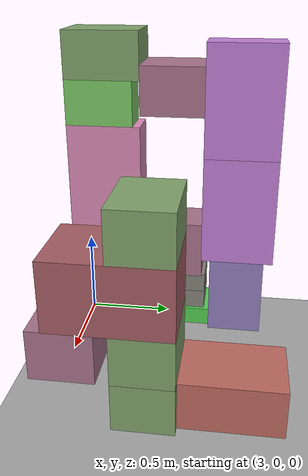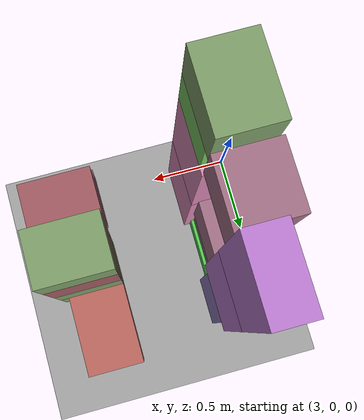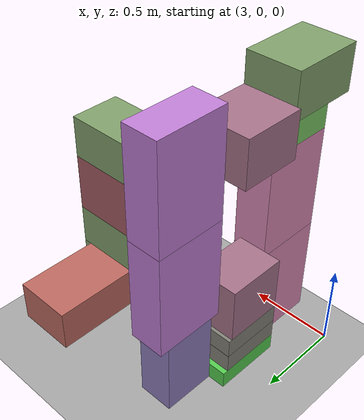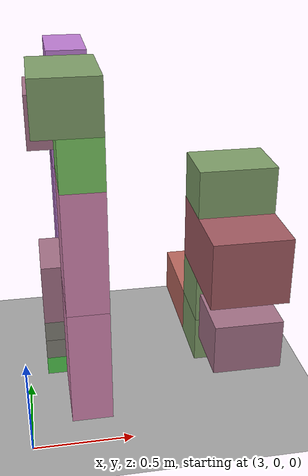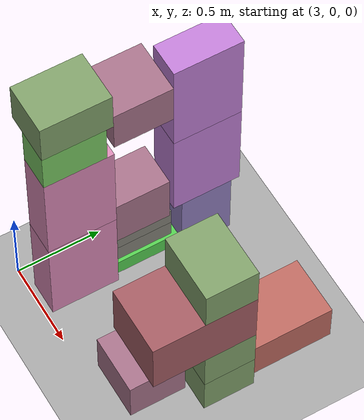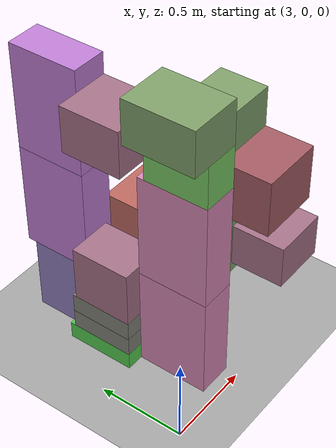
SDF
<sdf version="1.10">
 <world name="pallet_towers">
  <model name="ground_plane">
   <static>true</static>
   <link name="link">
    <collision name="collision">
     <geometry><plane><normal>0 0 1</normal><size>30 30</size></plane></geometry>
     <surface>
      <friction><ode><mu>0.55</mu><mu2>0.55</mu2></ode></friction>
      <bounce><restitution_coefficient>0</restitution_coefficient><threshold>100000</threshold></bounce>
      <contact><ode><kp>1000000</kp><kd>100</kd><max_vel>1</max_vel><min_depth>0.0005</min_depth></ode></contact>
     </surface>
    </collision>
    <visual name="visual">
     <geometry><plane><normal>0 0 1</normal><size>30 30</size></plane></geometry>
     <material><ambient>0.65 0.65 0.65 1</ambient><diffuse>0.65 0.65 0.65 1</diffuse></material>
    </visual>
   </link>
  </model>
  <model name="box_p03_0005_YOGURT_009_YOGURT">
   <static>false</static>
   <pose>3.23 0.595 0.194 0 0 0</pose>
   <link name="body">
    <inertial>
     <mass>5</mass>
     <inertia>
      <ixx>0.0675416667</ixx>
      <ixy>0</ixy>
      <ixz>0</ixz>
      <iyy>0.0323333333</iyy>
      <iyz>0</iyz>
      <izz>0.0915416667</izz>
     </inertia>
    </inertial>
    <collision name="collision">
     <geometry><box><size>0.26 0.39 0.1</size></box></geometry>
     <surface>
      <friction><ode><mu>0.55</mu><mu2>0.55</mu2></ode></friction>
      <bounce><restitution_coefficient>0</restitution_coefficient><threshold>100000</threshold></bounce>
      <contact><ode><kp>1000000</kp><kd>100</kd><max_vel>1</max_vel><min_depth>0.0005</min_depth></ode></contact>
     </surface>
    </collision>
    <visual name="visual">
     <geometry><box><size>0.26 0.39 0.1</size></box></geometry>
     <material>
      <ambient>0.329411765 0.803921569 0.31372549 1</ambient>
      <diffuse>0.329411765 0.803921569 0.31372549 1</diffuse>
      <specular>0.05 0.05 0.05 1</specular>
     </material>
    </visual>
   </link>
  </model>
  <model name="box_p03_0006_BUTTER_006_BUTTER">
   <static>false</static>
   <pose>3.22 0.58 0.299 0 0 0</pose>
   <link name="body">
    <inertial>
     <mass>10</mass>
     <inertia>
      <ixx>0.118083333</ixx>
      <ixy>0</ixy>
      <ixz>0</ixz>
      <iyy>0.0580833333</iyy>
      <iyz>0</iyz>
      <izz>0.156</izz>
     </inertia>
    </inertial>
    <collision name="collision">
     <geometry><box><size>0.24 0.36 0.11</size></box></geometry>
     <surface>
      <friction><ode><mu>0.55</mu><mu2>0.55</mu2></ode></friction>
      <bounce><restitution_coefficient>0</restitution_coefficient><threshold>100000</threshold></bounce>
      <contact><ode><kp>1000000</kp><kd>100</kd><max_vel>1</max_vel><min_depth>0.0005</min_depth></ode></contact>
     </surface>
    </collision>
    <visual name="visual">
     <geometry><box><size>0.24 0.36 0.11</size></box></geometry>
     <material>
      <ambient>0.51372549 0.509803922 0.466666667 1</ambient>
      <diffuse>0.51372549 0.509803922 0.466666667 1</diffuse>
      <specular>0.05 0.05 0.05 1</specular>
     </material>
    </visual>
   </link>
  </model>
  <model name="box_p03_0011_BUTTER_005_BUTTER">
   <static>false</static>
   <pose>3.22 0.58 0.409 0 0 0</pose>
   <link name="body">
    <inertial>
     <mass>10</mass>
     <inertia>
      <ixx>0.118083333</ixx>
      <ixy>0</ixy>
      <ixz>0</ixz>
      <iyy>0.0580833333</iyy>
      <iyz>0</iyz>
      <izz>0.156</izz>
     </inertia>
    </inertial>
    <collision name="collision">
     <geometry><box><size>0.24 0.36 0.11</size></box></geometry>
     <surface>
      <friction><ode><mu>0.55</mu><mu2>0.55</mu2></ode></friction>
      <bounce><restitution_coefficient>0</restitution_coefficient><threshold>100000</threshold></bounce>
      <contact><ode><kp>1000000</kp><kd>100</kd><max_vel>1</max_vel><min_depth>0.0005</min_depth></ode></contact>
     </surface>
    </collision>
    <visual name="visual">
     <geometry><box><size>0.24 0.36 0.11</size></box></geometry>
     <material>
      <ambient>0.51372549 0.509803922 0.466666667 1</ambient>
      <diffuse>0.51372549 0.509803922 0.466666667 1</diffuse>
      <specular>0.05 0.05 0.05 1</specular>
     </material>
    </visual>
   </link>
  </model>
  <model name="box_p03_0012_WINE_006_WINE">
   <static>false</static>
   <pose>3.23 0.57 0.624 0 0 0</pose>
   <link name="body">
    <inertial>
     <mass>18</mass>
     <inertia><ixx>0.327</ixx><ixy>0</ixy><ixz>0</ixz><iyy>0.255</iyy><iyz>0</iyz><izz>0.2748</izz></inertia>
    </inertial>
    <collision name="collision">
     <geometry><box><size>0.26 0.34 0.32</size></box></geometry>
     <surface>
      <friction><ode><mu>0.55</mu><mu2>0.55</mu2></ode></friction>
      <bounce><restitution_coefficient>0</restitution_coefficient><threshold>100000</threshold></bounce>
      <contact><ode><kp>1000000</kp><kd>100</kd><max_vel>1</max_vel><min_depth>0.0005</min_depth></ode></contact>
     </surface>
    </collision>
    <visual name="visual">
     <geometry><box><size>0.26 0.34 0.32</size></box></geometry>
     <material>
      <ambient>0.654901961 0.450980392 0.541176471 1</ambient>
      <diffuse>0.654901961 0.450980392 0.541176471 1</diffuse>
      <specular>0.05 0.05 0.05 1</specular>
     </material>
    </visual>
   </link>
  </model>
  <model name="box_p03_0013_POTATO_004_POTATO">
   <static>false</static>
   <pose>3.3 0.2 0.444 0 0 0</pose>
   <link name="body">
    <inertial>
     <mass>25</mass>
     <inertia>
      <ixx>1.08333333</ixx>
      <ixy>0</ixy>
      <ixz>0</ixz>
      <iyy>0.833333333</iyy>
      <iyz>0</iyz>
      <izz>0.416666667</izz>
     </inertia>
    </inertial>
    <collision name="collision">
     <geometry><box><size>0.2 0.4 0.6</size></box></geometry>
     <surface>
      <friction><ode><mu>0.55</mu><mu2>0.55</mu2></ode></friction>
      <bounce><restitution_coefficient>0</restitution_coefficient><threshold>100000</threshold></bounce>
      <contact><ode><kp>1000000</kp><kd>100</kd><max_vel>1</max_vel><min_depth>0.0005</min_depth></ode></contact>
     </surface>
    </collision>
    <visual name="visual">
     <geometry><box><size>0.2 0.4 0.6</size></box></geometry>
     <material>
      <ambient>0.854901961 0.541176471 0.71372549 1</ambient>
      <diffuse>0.854901961 0.541176471 0.71372549 1</diffuse>
      <specular>0.05 0.05 0.05 1</specular>
     </material>
    </visual>
   </link>
  </model>
  <model name="box_p03_0014_RICE_007_RICE">
   <static>false</static>
   <pose>3.3 0.94 0.364 0 0 0</pose>
   <link name="body">
    <inertial>
     <mass>20</mass>
     <inertia>
      <ixx>0.472666667</ixx>
      <ixy>0</ixy>
      <ixz>0</ixz>
      <iyy>0.389333333</iyy>
      <iyz>0</iyz>
      <izz>0.216666667</izz>
     </inertia>
    </inertial>
    <collision name="collision">
     <geometry><box><size>0.2 0.3 0.44</size></box></geometry>
     <surface>
      <friction><ode><mu>0.55</mu><mu2>0.55</mu2></ode></friction>
      <bounce><restitution_coefficient>0</restitution_coefficient><threshold>100000</threshold></bounce>
      <contact><ode><kp>1000000</kp><kd>100</kd><max_vel>1</max_vel><min_depth>0.0005</min_depth></ode></contact>
     </surface>
    </collision>
    <visual name="visual">
     <geometry><box><size>0.2 0.3 0.44</size></box></geometry>
     <material>
      <ambient>0.564705882 0.494117647 0.741176471 1</ambient>
      <diffuse>0.564705882 0.494117647 0.741176471 1</diffuse>
      <specular>0.05 0.05 0.05 1</specular>
     </material>
    </visual>
   </link>
  </model>
  <model name="box_p03_0018_POTATO_006_POTATO">
   <static>false</static>
   <pose>3.3 0.2 1.044 0 0 0</pose>
   <link name="body">
    <inertial>
     <mass>25</mass>
     <inertia>
      <ixx>1.08333333</ixx>
      <ixy>0</ixy>
      <ixz>0</ixz>
      <iyy>0.833333333</iyy>
      <iyz>0</iyz>
      <izz>0.416666667</izz>
     </inertia>
    </inertial>
    <collision name="collision">
     <geometry><box><size>0.2 0.4 0.6</size></box></geometry>
     <surface>
      <friction><ode><mu>0.55</mu><mu2>0.55</mu2></ode></friction>
      <bounce><restitution_coefficient>0</restitution_coefficient><threshold>100000</threshold></bounce>
      <contact><ode><kp>1000000</kp><kd>100</kd><max_vel>1</max_vel><min_depth>0.0005</min_depth></ode></contact>
     </surface>
    </collision>
    <visual name="visual">
     <geometry><box><size>0.2 0.4 0.6</size></box></geometry>
     <material>
      <ambient>0.854901961 0.541176471 0.71372549 1</ambient>
      <diffuse>0.854901961 0.541176471 0.71372549 1</diffuse>
      <specular>0.05 0.05 0.05 1</specular>
     </material>
    </visual>
   </link>
  </model>
  <model name="box_p03_0022_BREAD_007_BREAD">
   <static>false</static>
   <pose>3.3 0.94 0.884 0 0 0</pose>
   <link name="body">
    <inertial>
     <mass>4.5</mass>
     <inertia><ixx>0.195</ixx><ixy>0</ixy><ixz>0</ixz><iyy>0.15</iyy><iyz>0</iyz><izz>0.075</izz></inertia>
    </inertial>
    <collision name="collision">
     <geometry><box><size>0.2 0.4 0.6</size></box></geometry>
     <surface>
      <friction><ode><mu>0.55</mu><mu2>0.55</mu2></ode></friction>
      <bounce><restitution_coefficient>0</restitution_coefficient><threshold>100000</threshold></bounce>
      <contact><ode><kp>1000000</kp><kd>100</kd><max_vel>1</max_vel><min_depth>0.0005</min_depth></ode></contact>
     </surface>
    </collision>
    <visual name="visual">
     <geometry><box><size>0.2 0.4 0.6</size></box></geometry>
     <material>
      <ambient>0.756862745 0.498039216 0.839215686 1</ambient>
      <diffuse>0.756862745 0.498039216 0.839215686 1</diffuse>
      <specular>0.05 0.05 0.05 1</specular>
     </material>
    </visual>
   </link>
  </model>
  <model name="box_p03_0032_BREAD_012_BREAD">
   <static>false</static>
   <pose>3.3 0.94 1.484 0 0 0</pose>
   <link name="body">
    <inertial>
     <mass>4.5</mass>
     <inertia><ixx>0.195</ixx><ixy>0</ixy><ixz>0</ixz><iyy>0.15</iyy><iyz>0</iyz><izz>0.075</izz></inertia>
    </inertial>
    <collision name="collision">
     <geometry><box><size>0.2 0.4 0.6</size></box></geometry>
     <surface>
      <friction><ode><mu>0.55</mu><mu2>0.55</mu2></ode></friction>
      <bounce><restitution_coefficient>0</restitution_coefficient><threshold>100000</threshold></bounce>
      <contact><ode><kp>1000000</kp><kd>100</kd><max_vel>1</max_vel><min_depth>0.0005</min_depth></ode></contact>
     </surface>
    </collision>
    <visual name="visual">
     <geometry><box><size>0.2 0.4 0.6</size></box></geometry>
     <material>
      <ambient>0.756862745 0.498039216 0.839215686 1</ambient>
      <diffuse>0.756862745 0.498039216 0.839215686 1</diffuse>
      <specular>0.05 0.05 0.05 1</specular>
     </material>
    </visual>
   </link>
  </model>
  <model name="box_p03_0034_WINE_004_WINE">
   <static>false</static>
   <pose>3.24 0.57 1.534 0 0 0</pose>
   <link name="body">
    <inertial>
     <mass>18</mass>
     <inertia><ixx>0.2748</ixx><ixy>0</ixy><ixz>0</ixz><iyy>0.255</iyy><iyz>0</iyz><izz>0.327</izz></inertia>
    </inertial>
    <collision name="collision">
     <geometry><box><size>0.32 0.34 0.26</size></box></geometry>
     <surface>
      <friction><ode><mu>0.55</mu><mu2>0.55</mu2></ode></friction>
      <bounce><restitution_coefficient>0</restitution_coefficient><threshold>100000</threshold></bounce>
      <contact><ode><kp>1000000</kp><kd>100</kd><max_vel>1</max_vel><min_depth>0.0005</min_depth></ode></contact>
     </surface>
    </collision>
    <visual name="visual">
     <geometry><box><size>0.32 0.34 0.26</size></box></geometry>
     <material>
      <ambient>0.654901961 0.450980392 0.541176471 1</ambient>
      <diffuse>0.654901961 0.450980392 0.541176471 1</diffuse>
      <specular>0.05 0.05 0.05 1</specular>
     </material>
    </visual>
   </link>
  </model>
  <model name="box_p03_0035_TEA_004_TEA">
   <static>false</static>
   <pose>3.3 0.18 1.464 0 0 0</pose>
   <link name="body">
    <inertial>
     <mass>5</mass>
     <inertia>
      <ixx>0.078</ixx>
      <ixy>0</ixy>
      <ixz>0</ixz>
      <iyy>0.0406666667</iyy>
      <iyz>0</iyz>
      <izz>0.0706666667</izz>
     </inertia>
    </inertial>
    <collision name="collision">
     <geometry><box><size>0.2 0.36 0.24</size></box></geometry>
     <surface>
      <friction><ode><mu>0.55</mu><mu2>0.55</mu2></ode></friction>
      <bounce><restitution_coefficient>0</restitution_coefficient><threshold>100000</threshold></bounce>
      <contact><ode><kp>1000000</kp><kd>100</kd><max_vel>1</max_vel><min_depth>0.0005</min_depth></ode></contact>
     </surface>
    </collision>
    <visual name="visual">
     <geometry><box><size>0.2 0.36 0.24</size></box></geometry>
     <material>
      <ambient>0.478431373 0.788235294 0.388235294 1</ambient>
      <diffuse>0.478431373 0.788235294 0.388235294 1</diffuse>
      <specular>0.05 0.05 0.05 1</specular>
     </material>
    </visual>
   </link>
  </model>
  <model name="box_p03_0036_COFFEE_014_COFFEE">
   <static>false</static>
   <pose>3.25 0.2 1.709 0 0 0</pose>
   <link name="body">
    <inertial>
     <mass>13</mass>
     <inertia>
      <ixx>0.241041667</ixx>
      <ixy>0</ixy>
      <ixz>0</ixz>
      <iyy>0.165208333</iyy>
      <iyz>0</iyz>
      <izz>0.270833333</izz>
     </inertia>
    </inertial>
    <collision name="collision">
     <geometry><box><size>0.3 0.4 0.25</size></box></geometry>
     <surface>
      <friction><ode><mu>0.55</mu><mu2>0.55</mu2></ode></friction>
      <bounce><restitution_coefficient>0</restitution_coefficient><threshold>100000</threshold></bounce>
      <contact><ode><kp>1000000</kp><kd>100</kd><max_vel>1</max_vel><min_depth>0.0005</min_depth></ode></contact>
     </surface>
    </collision>
    <visual name="visual">
     <geometry><box><size>0.3 0.4 0.25</size></box></geometry>
     <material>
      <ambient>0.505882353 0.631372549 0.419607843 1</ambient>
      <diffuse>0.505882353 0.631372549 0.419607843 1</diffuse>
      <specular>0.05 0.05 0.05 1</specular>
     </material>
    </visual>
   </link>
  </model>
  <model name="box_p04_0002_COFFEE_011_COFFEE">
   <static>false</static>
   <pose>4.1 0.55 0.269 0 0 0</pose>
   <link name="body">
    <inertial>
     <mass>13</mass>
     <inertia>
      <ixx>0.165208333</ixx>
      <ixy>0</ixy>
      <ixz>0</ixz>
      <iyy>0.241041667</iyy>
      <iyz>0</iyz>
      <izz>0.270833333</izz>
     </inertia>
    </inertial>
    <collision name="collision">
     <geometry><box><size>0.4 0.3 0.25</size></box></geometry>
     <surface>
      <friction><ode><mu>0.55</mu><mu2>0.55</mu2></ode></friction>
      <bounce><restitution_coefficient>0</restitution_coefficient><threshold>100000</threshold></bounce>
      <contact><ode><kp>1000000</kp><kd>100</kd><max_vel>1</max_vel><min_depth>0.0005</min_depth></ode></contact>
     </surface>
    </collision>
    <visual name="visual">
     <geometry><box><size>0.4 0.3 0.25</size></box></geometry>
     <material>
      <ambient>0.505882353 0.631372549 0.419607843 1</ambient>
      <diffuse>0.505882353 0.631372549 0.419607843 1</diffuse>
      <specular>0.05 0.05 0.05 1</specular>
     </material>
    </visual>
   </link>
  </model>
  <model name="box_p04_0004_ONION_004_ONION">
   <static>false</static>
   <pose>4.075 0.95 0.269 0 0 0</pose>
   <link name="body">
    <inertial>
     <mass>10</mass>
     <inertia>
      <ixx>0.260416667</ixx>
      <ixy>0</ixy>
      <ixz>0</ixz>
      <iyy>0.154166667</iyy>
      <iyz>0</iyz>
      <izz>0.310416667</izz>
     </inertia>
    </inertial>
    <collision name="collision">
     <geometry><box><size>0.35 0.5 0.25</size></box></geometry>
     <surface>
      <friction><ode><mu>0.55</mu><mu2>0.55</mu2></ode></friction>
      <bounce><restitution_coefficient>0</restitution_coefficient><threshold>100000</threshold></bounce>
      <contact><ode><kp>1000000</kp><kd>100</kd><max_vel>1</max_vel><min_depth>0.0005</min_depth></ode></contact>
     </surface>
    </collision>
    <visual name="visual">
     <geometry><box><size>0.35 0.5 0.25</size></box></geometry>
     <material>
      <ambient>0.741176471 0.411764706 0.376470588 1</ambient>
      <diffuse>0.741176471 0.411764706 0.376470588 1</diffuse>
      <specular>0.05 0.05 0.05 1</specular>
     </material>
    </visual>
   </link>
  </model>
  <model name="box_p04_0008_WINE_005_WINE">
   <static>false</static>
   <pose>4.07 0.16 0.474 0 0 0</pose>
   <link name="body">
    <inertial>
     <mass>18</mass>
     <inertia><ixx>0.255</ixx><ixy>0</ixy><ixz>0</ixz><iyy>0.2748</iyy><iyz>0</iyz><izz>0.327</izz></inertia>
    </inertial>
    <collision name="collision">
     <geometry><box><size>0.34 0.32 0.26</size></box></geometry>
     <surface>
      <friction><ode><mu>0.55</mu><mu2>0.55</mu2></ode></friction>
      <bounce><restitution_coefficient>0</restitution_coefficient><threshold>100000</threshold></bounce>
      <contact><ode><kp>1000000</kp><kd>100</kd><max_vel>1</max_vel><min_depth>0.0005</min_depth></ode></contact>
     </surface>
    </collision>
    <visual name="visual">
     <geometry><box><size>0.34 0.32 0.26</size></box></geometry>
     <material>
      <ambient>0.654901961 0.450980392 0.541176471 1</ambient>
      <diffuse>0.654901961 0.450980392 0.541176471 1</diffuse>
      <specular>0.05 0.05 0.05 1</specular>
     </material>
    </visual>
   </link>
  </model>
  <model name="box_p04_0010_COFFEE_009_COFFEE">
   <static>false</static>
   <pose>4.1 0.55 0.519 0 0 0</pose>
   <link name="body">
    <inertial>
     <mass>13</mass>
     <inertia>
      <ixx>0.165208333</ixx>
      <ixy>0</ixy>
      <ixz>0</ixz>
      <iyy>0.241041667</iyy>
      <iyz>0</iyz>
      <izz>0.270833333</izz>
     </inertia>
    </inertial>
    <collision name="collision">
     <geometry><box><size>0.4 0.3 0.25</size></box></geometry>
     <surface>
      <friction><ode><mu>0.55</mu><mu2>0.55</mu2></ode></friction>
      <bounce><restitution_coefficient>0</restitution_coefficient><threshold>100000</threshold></bounce>
      <contact><ode><kp>1000000</kp><kd>100</kd><max_vel>1</max_vel><min_depth>0.0005</min_depth></ode></contact>
     </surface>
    </collision>
    <visual name="visual">
     <geometry><box><size>0.4 0.3 0.25</size></box></geometry>
     <material>
      <ambient>0.505882353 0.631372549 0.419607843 1</ambient>
      <diffuse>0.505882353 0.631372549 0.419607843 1</diffuse>
      <specular>0.05 0.05 0.05 1</specular>
     </material>
    </visual>
   </link>
  </model>
  <model name="box_p04_0016_CHIPS_006_CHIPS">
   <static>false</static>
   <pose>4.1 0.4 0.819 0 0 0</pose>
   <link name="body">
    <inertial>
     <mass>3.5</mass>
     <inertia>
      <ixx>0.140729167</ixx>
      <ixy>0</ixy>
      <ixz>0</ixz>
      <iyy>0.0823958333</iyy>
      <iyz>0</iyz>
      <izz>0.151666667</izz>
     </inertia>
    </inertial>
    <collision name="collision">
     <geometry><box><size>0.4 0.6 0.35</size></box></geometry>
     <surface>
      <friction><ode><mu>0.55</mu><mu2>0.55</mu2></ode></friction>
      <bounce><restitution_coefficient>0</restitution_coefficient><threshold>100000</threshold></bounce>
      <contact><ode><kp>1000000</kp><kd>100</kd><max_vel>1</max_vel><min_depth>0.0005</min_depth></ode></contact>
     </surface>
    </collision>
    <visual name="visual">
     <geometry><box><size>0.4 0.6 0.35</size></box></geometry>
     <material>
      <ambient>0.643137255 0.360784314 0.388235294 1</ambient>
      <diffuse>0.643137255 0.360784314 0.388235294 1</diffuse>
      <specular>0.05 0.05 0.05 1</specular>
     </material>
    </visual>
   </link>
  </model>
  <model name="box_p04_0022_COFFEE_012_COFFEE">
   <static>false</static>
   <pose>4.1 0.55 1.119 0 0 0</pose>
   <link name="body">
    <inertial>
     <mass>13</mass>
     <inertia>
      <ixx>0.165208333</ixx>
      <ixy>0</ixy>
      <ixz>0</ixz>
      <iyy>0.241041667</iyy>
      <iyz>0</iyz>
      <izz>0.270833333</izz>
     </inertia>
    </inertial>
    <collision name="collision">
     <geometry><box><size>0.4 0.3 0.25</size></box></geometry>
     <surface>
      <friction><ode><mu>0.55</mu><mu2>0.55</mu2></ode></friction>
      <bounce><restitution_coefficient>0</restitution_coefficient><threshold>100000</threshold></bounce>
      <contact><ode><kp>1000000</kp><kd>100</kd><max_vel>1</max_vel><min_depth>0.0005</min_depth></ode></contact>
     </surface>
    </collision>
    <visual name="visual">
     <geometry><box><size>0.4 0.3 0.25</size></box></geometry>
     <material>
      <ambient>0.505882353 0.631372549 0.419607843 1</ambient>
      <diffuse>0.505882353 0.631372549 0.419607843 1</diffuse>
      <specular>0.05 0.05 0.05 1</specular>
     </material>
    </visual>
   </link>
  </model>
 </world>
</sdf>
